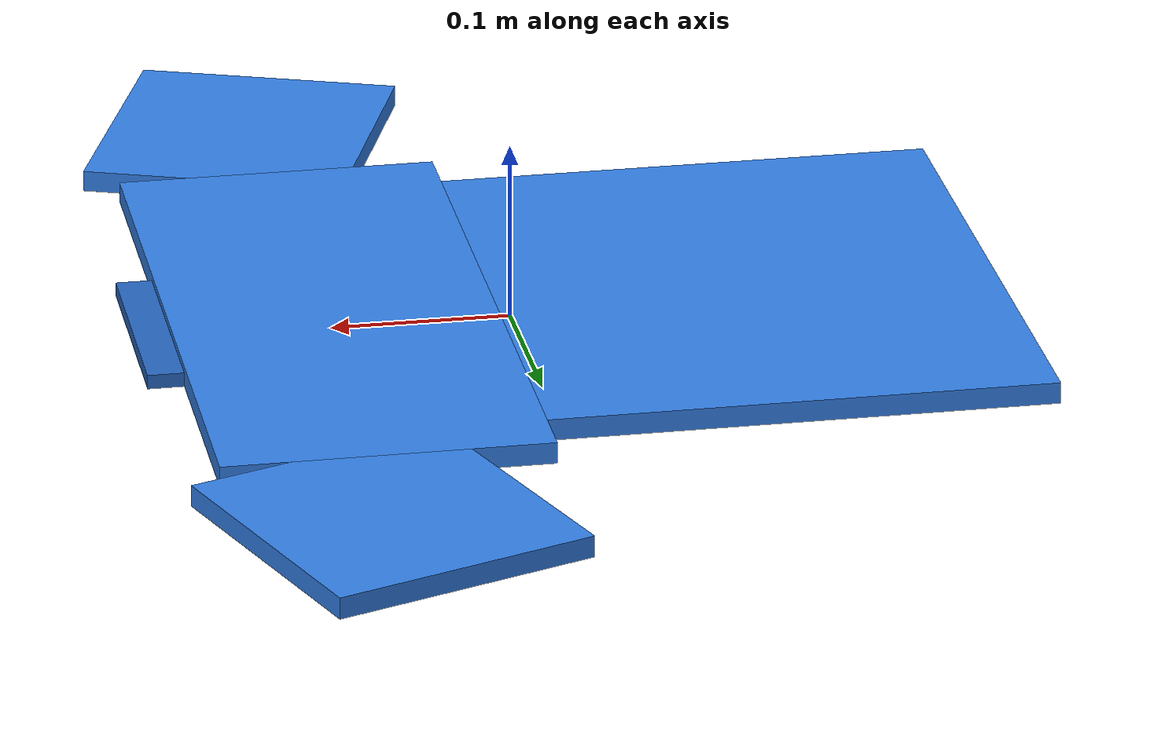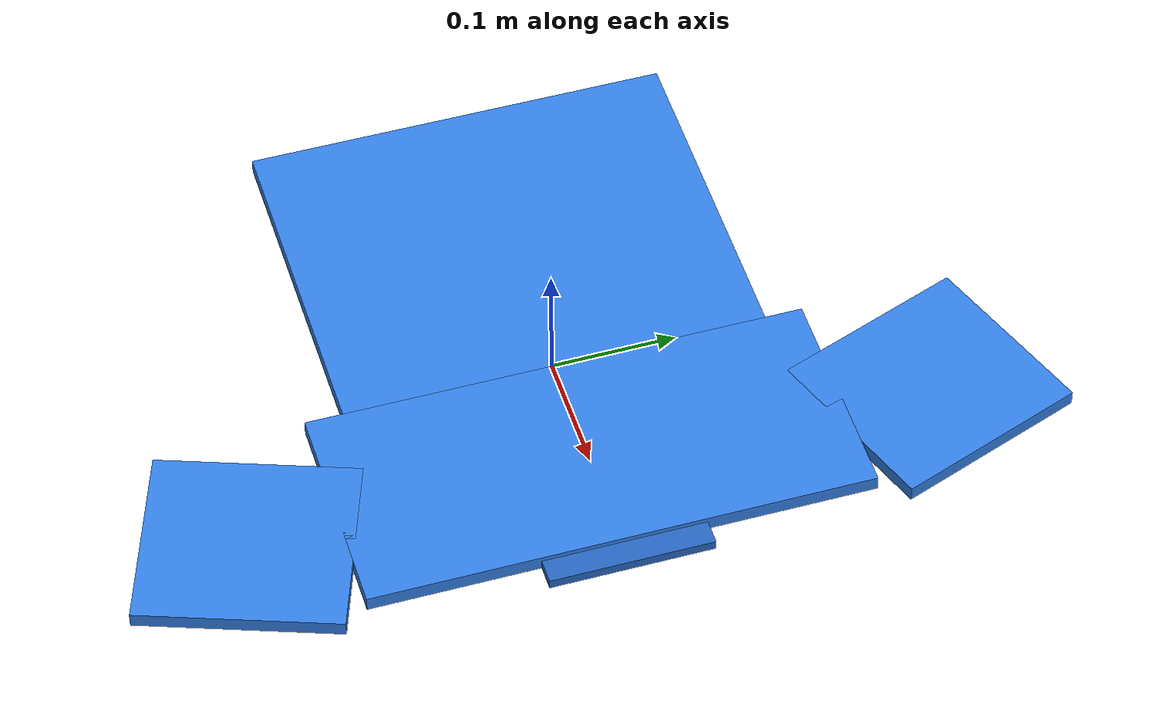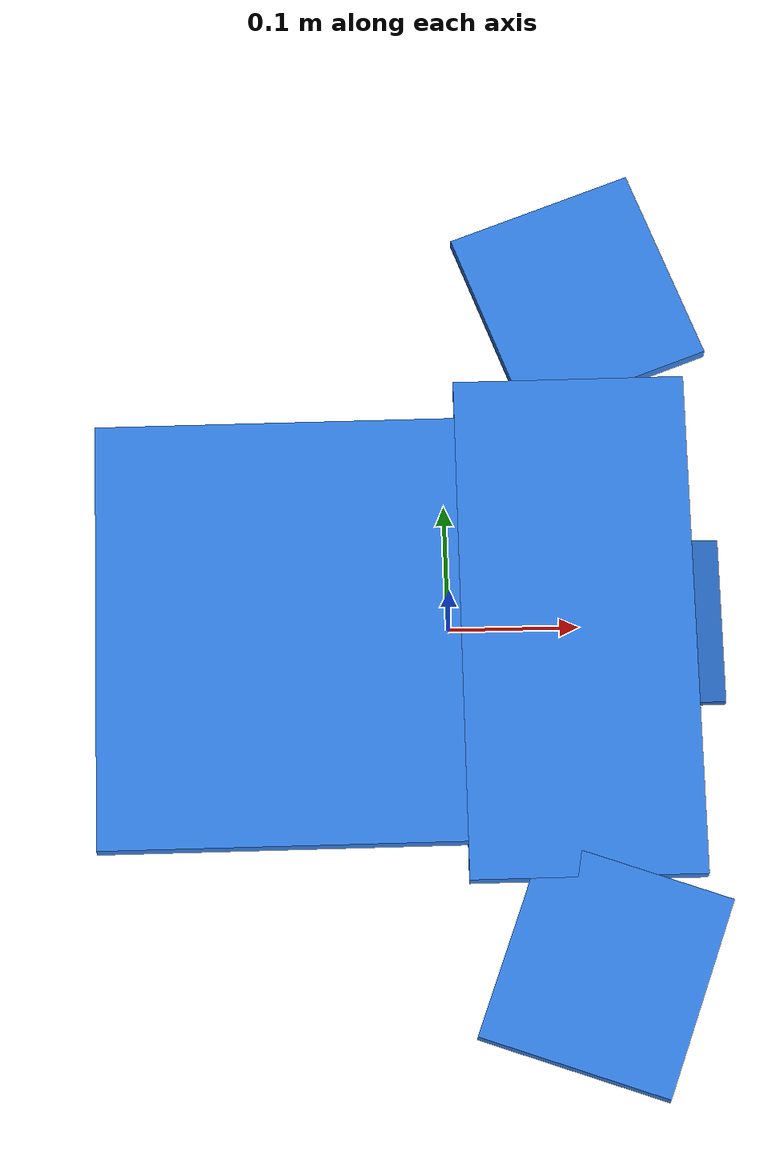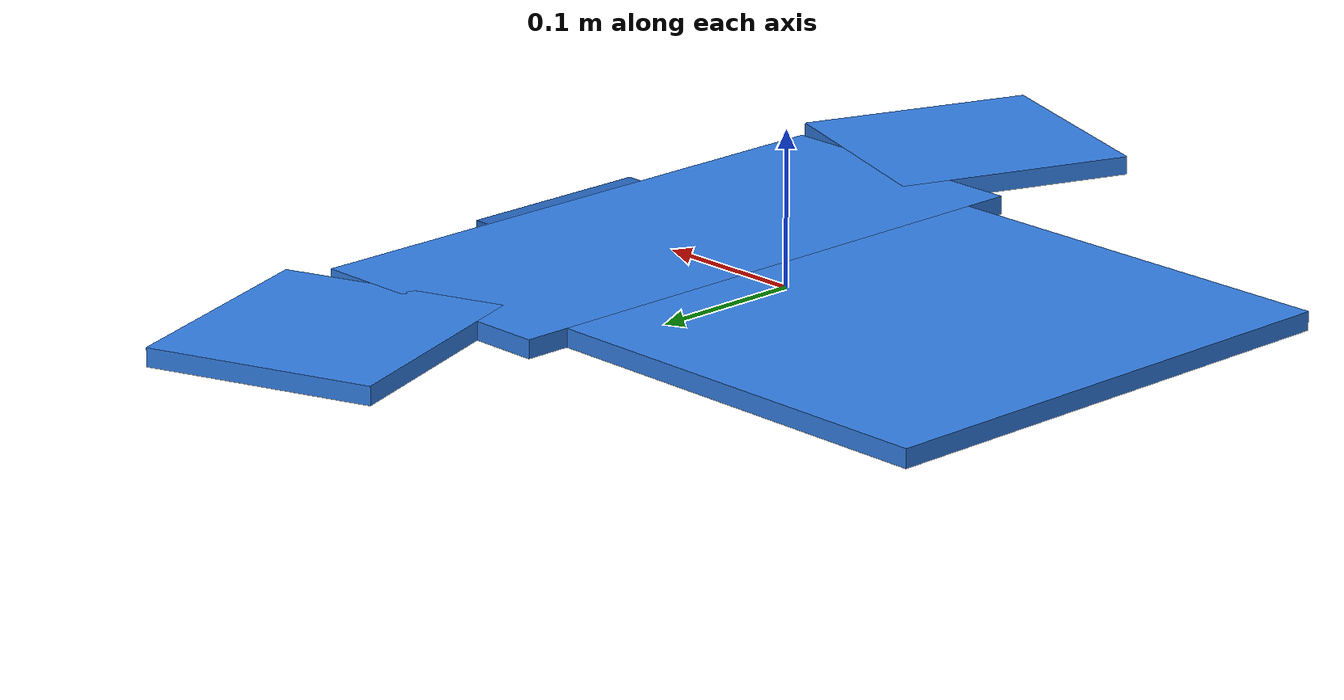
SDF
<?xml version="1.0"?>
<sdf version="1.6">
  <model name="tshirt_flat">
    <static>true</static>

    <link name="torso_upper">
      <pose>0.10 0 0.006 0 0 0</pose>
      <collision name="c"><geometry><box><size>0.18 0.40 0.012</size></box></geometry></collision>
      <visual name="v"><geometry><box><size>0.18 0.40 0.012</size></box></geometry>
        <material><ambient>0.2 0.5 0.9 1</ambient><diffuse>0.2 0.5 0.9 1</diffuse></material></visual>
    </link>

    <link name="torso_lower">
      <pose>-0.13 0 0.006 0 0 0</pose>
      <collision name="c"><geometry><box><size>0.28 0.34 0.012</size></box></geometry></collision>
      <visual name="v"><geometry><box><size>0.28 0.34 0.012</size></box></geometry>
        <material><ambient>0.2 0.5 0.9 1</ambient><diffuse>0.2 0.5 0.9 1</diffuse></material></visual>
    </link>

    <link name="sleeve_l">
      <pose>0.11 0.27 0.006 0 0 0.35</pose>
      <collision name="c"><geometry><box><size>0.15 0.16 0.012</size></box></geometry></collision>
      <visual name="v"><geometry><box><size>0.15 0.16 0.012</size></box></geometry>
        <material><ambient>0.2 0.5 0.9 1</ambient><diffuse>0.2 0.5 0.9 1</diffuse></material></visual>
    </link>

    <link name="sleeve_r">
      <pose>0.11 -0.27 0.006 0 0 -0.35</pose>
      <collision name="c"><geometry><box><size>0.15 0.16 0.012</size></box></geometry></collision>
      <visual name="v"><geometry><box><size>0.15 0.16 0.012</size></box></geometry>
        <material><ambient>0.2 0.5 0.9 1</ambient><diffuse>0.2 0.5 0.9 1</diffuse></material></visual>
    </link>

    <link name="neck">
      <pose>0.19 0 0.004 0 0 0</pose>
      <collision name="c"><geometry><box><size>0.04 0.13 0.008</size></box></geometry></collision>
      <visual name="v"><geometry><box><size>0.04 0.13 0.008</size></box></geometry>
        <material><ambient>0.15 0.4 0.75 1</ambient><diffuse>0.15 0.4 0.75 1</diffuse></material></visual>
    </link>

  </model>
</sdf>
